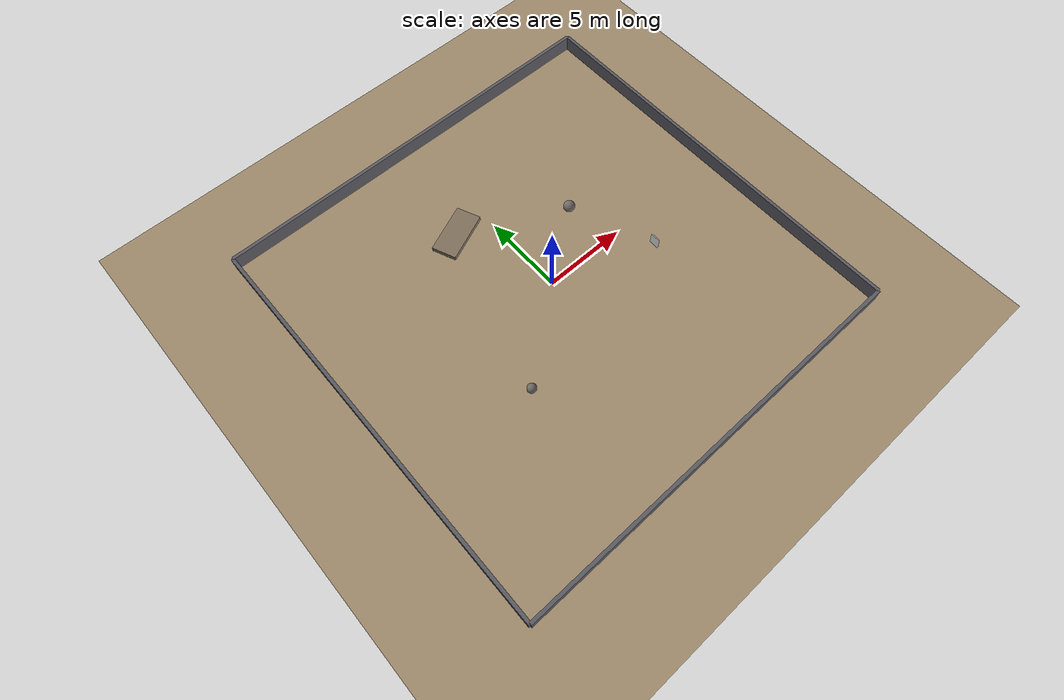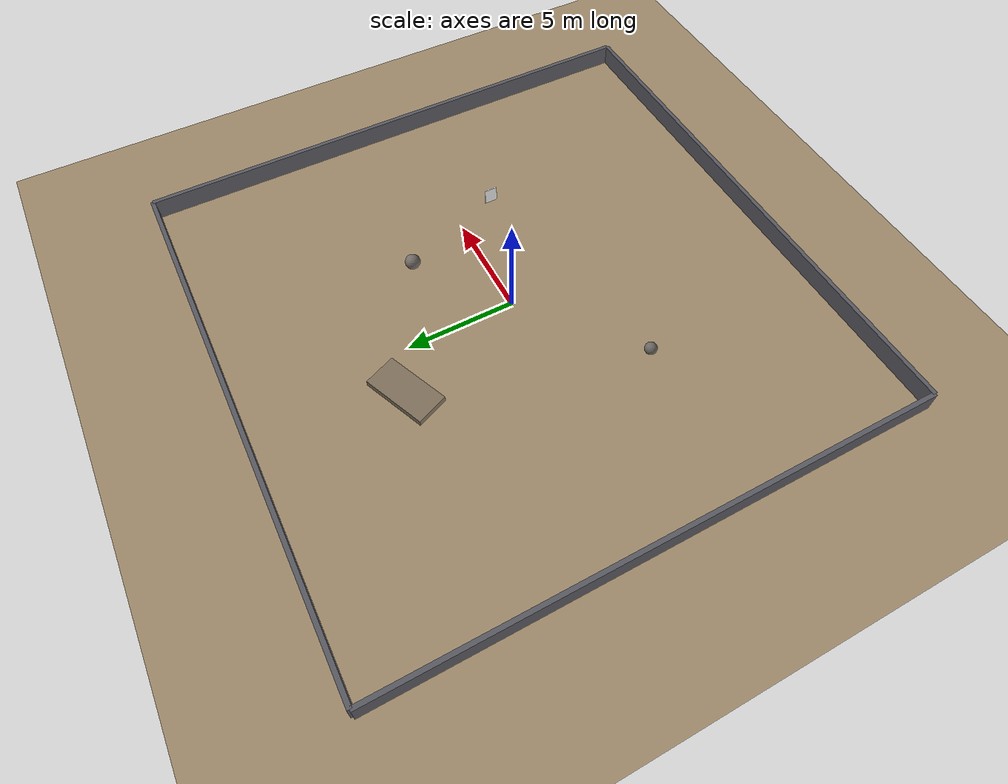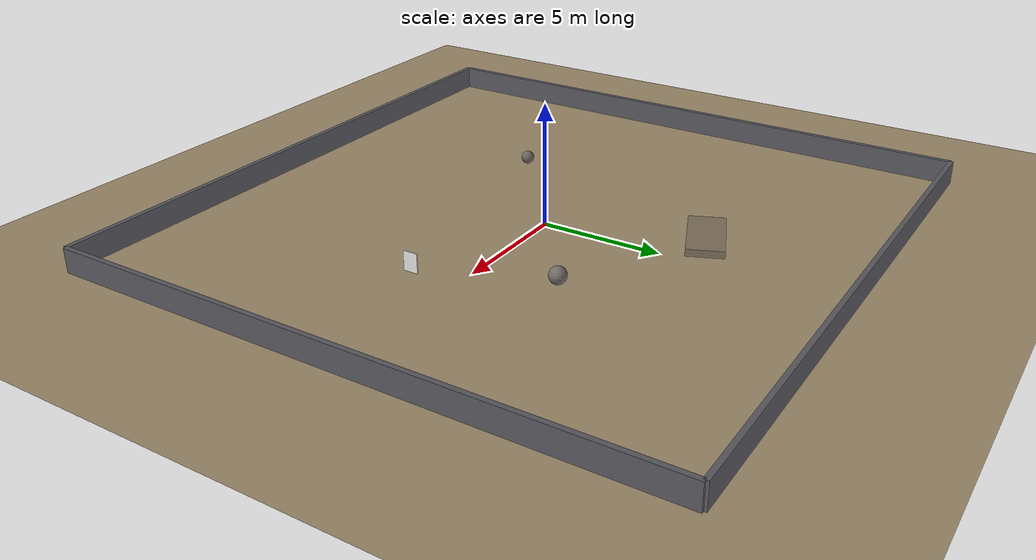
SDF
<?xml version="1.0" ?>
<sdf version="1.6">
  <world name="urc_field">

    <physics type="ode">
      <max_step_size>0.001</max_step_size>
      <real_time_factor>1.0</real_time_factor>
      <real_time_update_rate>1000</real_time_update_rate>
    </physics>

    <plugin name="gazebo_ros_state" filename="libgazebo_ros_state.so">
      <ros>
        <namespace>/</namespace>
      </ros>
      <update_rate>50</update_rate>
    </plugin>

    <light name="sun" type="directional">
      <cast_shadows>true</cast_shadows>
      <pose>0 0 10 0 0.6 0</pose>
      <diffuse>0.9 0.9 0.85 1</diffuse>
      <specular>0.3 0.3 0.3 1</specular>
      <direction>-0.3 0.2 -1</direction>
    </light>

    <model name="ground_plane">
      <static>true</static>
      <link name="link">
        <collision name="collision">
          <geometry>
            <plane>
              <normal>0 0 1</normal>
              <size>80 80</size>
            </plane>
          </geometry>
        </collision>
        <visual name="visual">
          <geometry>
            <plane>
              <normal>0 0 1</normal>
              <size>80 80</size>
            </plane>
          </geometry>
          <material>
            <ambient>0.55 0.48 0.38 1</ambient>
            <diffuse>0.62 0.54 0.42 1</diffuse>
          </material>
        </visual>
      </link>
    </model>

    <model name="wall_north">
      <static>true</static>
      <pose>0 12.5 0.5 0 0 0</pose>
      <link name="link">
        <collision name="collision">
          <geometry><box><size>25 0.2 1</size></box></geometry>
        </collision>
        <visual name="visual">
          <geometry><box><size>25 0.2 1</size></box></geometry>
          <material><ambient>0.35 0.35 0.38 1</ambient></material>
        </visual>
      </link>
    </model>

    <model name="wall_south">
      <static>true</static>
      <pose>0 -12.5 0.5 0 0 0</pose>
      <link name="link">
        <collision name="collision">
          <geometry><box><size>25 0.2 1</size></box></geometry>
        </collision>
        <visual name="visual">
          <geometry><box><size>25 0.2 1</size></box></geometry>
          <material><ambient>0.35 0.35 0.38 1</ambient></material>
        </visual>
      </link>
    </model>

    <model name="wall_east">
      <static>true</static>
      <pose>12.5 0 0.5 0 0 0</pose>
      <link name="link">
        <collision name="collision">
          <geometry><box><size>0.2 25 1</size></box></geometry>
        </collision>
        <visual name="visual">
          <geometry><box><size>0.2 25 1</size></box></geometry>
          <material><ambient>0.35 0.35 0.38 1</ambient></material>
        </visual>
      </link>
    </model>

    <model name="wall_west">
      <static>true</static>
      <pose>-12.5 0 0.5 0 0 0</pose>
      <link name="link">
        <collision name="collision">
          <geometry><box><size>0.2 25 1</size></box></geometry>
        </collision>
        <visual name="visual">
          <geometry><box><size>0.2 25 1</size></box></geometry>
          <material><ambient>0.35 0.35 0.38 1</ambient></material>
        </visual>
      </link>
    </model>

    <model name="rock_1">
      <static>true</static>
      <pose>4 3 0.35 0 0 0</pose>
      <link name="link">
        <collision name="collision">
          <geometry><sphere><radius>0.35</radius></sphere></geometry>
        </collision>
        <visual name="visual">
          <geometry><sphere><radius>0.35</radius></sphere></geometry>
          <material><ambient>0.45 0.42 0.4 1</ambient></material>
        </visual>
      </link>
    </model>

    <model name="rock_2">
      <static>true</static>
      <pose>-5 -4 0.28 0 0 0</pose>
      <link name="link">
        <collision name="collision">
          <geometry><sphere><radius>0.28</radius></sphere></geometry>
        </collision>
        <visual name="visual">
          <geometry><sphere><radius>0.28</radius></sphere></geometry>
          <material><ambient>0.42 0.4 0.38 1</ambient></material>
        </visual>
      </link>
    </model>

    <model name="berm">
      <static>true</static>
      <pose>-2 6 0.15 0 0 0.4</pose>
      <link name="link">
        <collision name="collision">
          <geometry><box><size>3 1.5 0.3</size></box></geometry>
        </collision>
        <visual name="visual">
          <geometry><box><size>3 1.5 0.3</size></box></geometry>
          <material><ambient>0.5 0.44 0.36 1</ambient></material>
        </visual>
      </link>
    </model>

    <model name="marker_post">
      <static>true</static>
      <pose>6 -2 0.4 0 0 0</pose>
      <link name="link">
        <collision name="collision">
          <geometry><box><size>0.05 0.6 0.8</size></box></geometry>
        </collision>
        <visual name="visual">
          <geometry><box><size>0.05 0.6 0.8</size></box></geometry>
          <material><ambient>0.9 0.9 0.9 1</ambient></material>
        </visual>
      </link>
    </model>

  </world>
</sdf>
